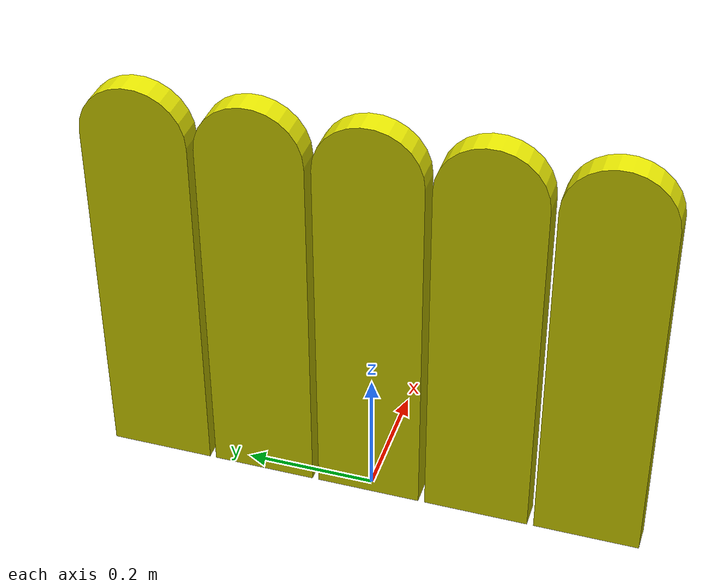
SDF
<?xml version="1.0" ?>
<sdf version="1.4">
  <model name="puppy_fence">
    <static>true</static>
    <link name="link">
      <visual name="visual">
        <geometry>
          <mesh>
            <uri>model://puppy_fence/meshes/fence.dae</uri>
          </mesh>
        </geometry>
      </visual>
      <collision name="simple_collision">
        <geometry>
          <mesh>
            <uri>model://puppy_fence/meshes/fence.dae</uri>
          </mesh>
        </geometry>
      </collision>
    </link>
  </model>
</sdf>
